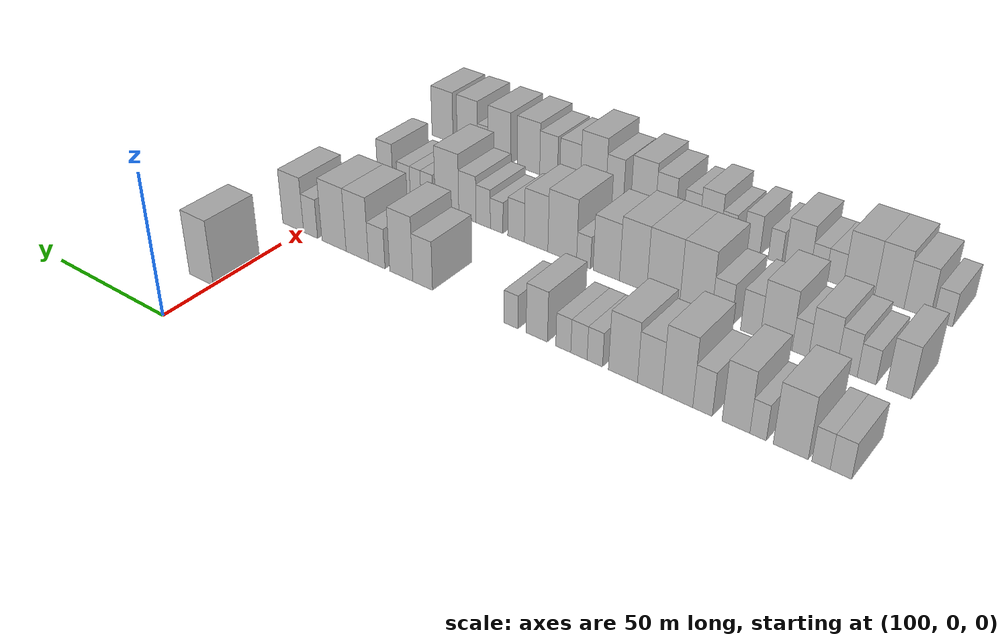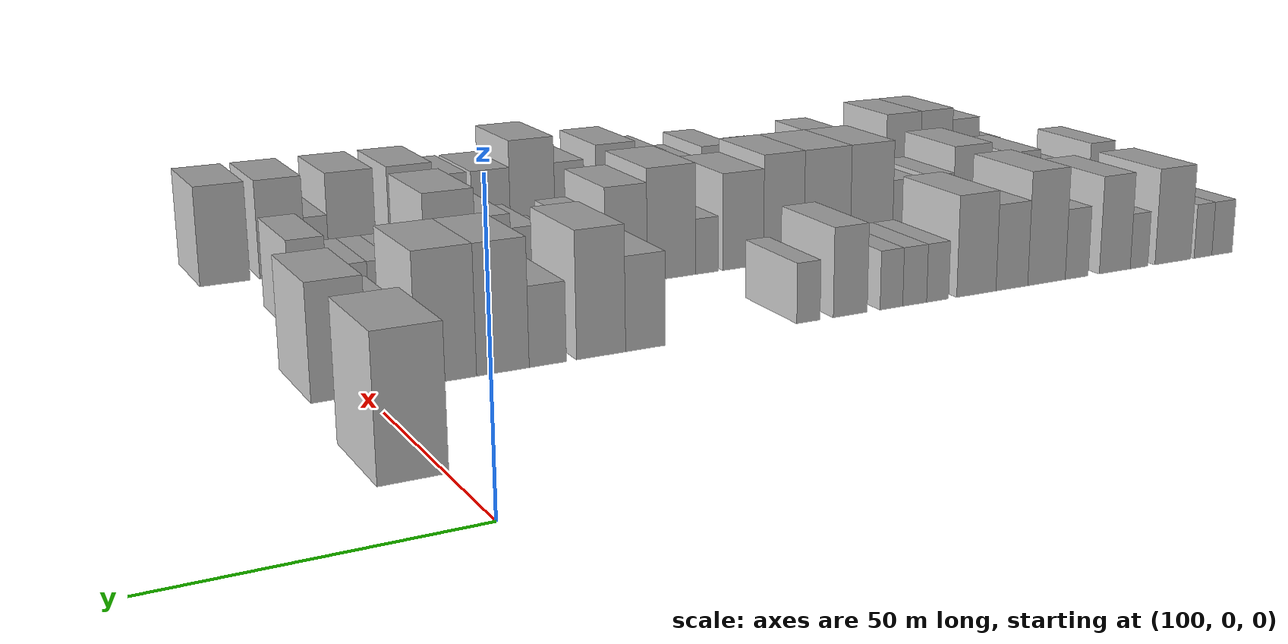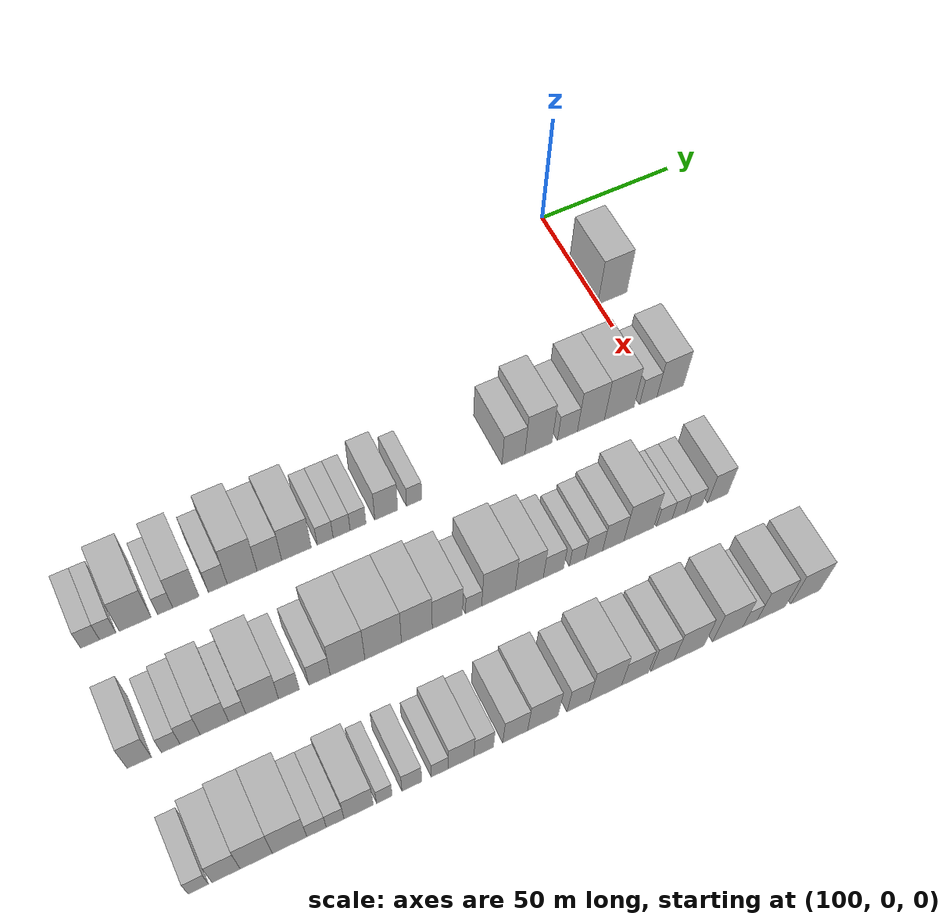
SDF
<sdf version="1.6">
 <world name="default">
  <model name="building_339">
   <static>1</static>
   <pose>130.0000 5.2632 0 0.000000 0.000000 0.000000</pose>
   <link name="link">
    <pose>0 0 12.00 0 0 0</pose>
    <collision name="collision"><geometry><box><size>20.0000 11.1736 24.0000</size></box></geometry></collision>
    <visual name="visual">
     <cast_shadows>0</cast_shadows>
     <geometry><box><size>20.0000 11.1736 24.0000</size></box></geometry>
     <material>
      <script>
       <uri>model://HANNAS_wall/materials/scripts</uri>
       <uri>model://HANNAS_wall/materials/textures</uri>
       <name>vrc/HANNAS_wall</name>
      </script>
     </material>
    </visual>
   </link>
  </model>
  <model name="building_456">
   <static>1</static>
   <pose>170.0000 -193.8971 0 0.000000 0.000000 0.000000</pose>
   <link name="link">
    <pose>0 0 6.00 0 0 0</pose>
    <collision name="collision"><geometry><box><size>20.0000 5.9659 12.0000</size></box></geometry></collision>
    <visual name="visual">
     <cast_shadows>0</cast_shadows>
     <geometry><box><size>20.0000 5.9659 12.0000</size></box></geometry>
     <material>
      <script>
       <uri>model://HANNAS_wall/materials/scripts</uri>
       <uri>model://HANNAS_wall/materials/textures</uri>
       <name>vrc/HANNAS_wall</name>
      </script>
     </material>
    </visual>
   </link>
  </model>
  <model name="building_457">
   <static>1</static>
   <pose>170.0000 -188.3424 0 0.000000 0.000000 0.000000</pose>
   <link name="link">
    <pose>0 0 6.00 0 0 0</pose>
    <collision name="collision"><geometry><box><size>20.0000 5.1435 12.0000</size></box></geometry></collision>
    <visual name="visual">
     <cast_shadows>0</cast_shadows>
     <geometry><box><size>20.0000 5.1435 12.0000</size></box></geometry>
     <material>
      <script>
       <uri>model://HANNAS_wall/materials/scripts</uri>
       <uri>model://HANNAS_wall/materials/textures</uri>
       <name>vrc/HANNAS_wall</name>
      </script>
     </material>
    </visual>
   </link>
  </model>
  <model name="building_458">
   <static>1</static>
   <pose>170.0000 -179.7180 0 0.000000 0.000000 0.000000</pose>
   <link name="link">
    <pose>0 0 10.50 0 0 0</pose>
    <collision name="collision"><geometry><box><size>20.0000 10.1053 21.0000</size></box></geometry></collision>
    <visual name="visual">
     <cast_shadows>0</cast_shadows>
     <geometry><box><size>20.0000 10.1053 21.0000</size></box></geometry>
     <material>
      <script>
       <uri>model://HANNAS_wall/materials/scripts</uri>
       <uri>model://HANNAS_wall/materials/textures</uri>
       <name>vrc/HANNAS_wall</name>
      </script>
     </material>
    </visual>
   </link>
  </model>
  <model name="building_459">
   <static>1</static>
   <pose>170.0000 -170.2269 0 0.000000 0.000000 0.000000</pose>
   <link name="link">
    <pose>0 0 6.00 0 0 0</pose>
    <collision name="collision"><geometry><box><size>20.0000 4.8769 12.0000</size></box></geometry></collision>
    <visual name="visual">
     <cast_shadows>0</cast_shadows>
     <geometry><box><size>20.0000 4.8769 12.0000</size></box></geometry>
     <material>
      <script>
       <uri>model://HANNAS_wall/materials/scripts</uri>
       <uri>model://HANNAS_wall/materials/textures</uri>
       <name>vrc/HANNAS_wall</name>
      </script>
     </material>
    </visual>
   </link>
  </model>
  <model name="building_460">
   <static>1</static>
   <pose>170.0000 -163.5722 0 0.000000 0.000000 0.000000</pose>
   <link name="link">
    <pose>0 0 10.50 0 0 0</pose>
    <collision name="collision"><geometry><box><size>20.0000 8.4324 21.0000</size></box></geometry></collision>
    <visual name="visual">
     <cast_shadows>0</cast_shadows>
     <geometry><box><size>20.0000 8.4324 21.0000</size></box></geometry>
     <material>
      <script>
       <uri>model://HANNAS_wall/materials/scripts</uri>
       <uri>model://HANNAS_wall/materials/textures</uri>
       <name>vrc/HANNAS_wall</name>
      </script>
     </material>
    </visual>
   </link>
  </model>
  <model name="building_461">
   <static>1</static>
   <pose>170.0000 -153.2986 0 0.000000 0.000000 0.000000</pose>
   <link name="link">
    <pose>0 0 7.50 0 0 0</pose>
    <collision name="collision"><geometry><box><size>20.0000 6.1147 15.0000</size></box></geometry></collision>
    <visual name="visual">
     <cast_shadows>0</cast_shadows>
     <geometry><box><size>20.0000 6.1147 15.0000</size></box></geometry>
     <material>
      <script>
       <uri>model://HANNAS_wall/materials/scripts</uri>
       <uri>model://HANNAS_wall/materials/textures</uri>
       <name>vrc/HANNAS_wall</name>
      </script>
     </material>
    </visual>
   </link>
  </model>
  <model name="building_462">
   <static>1</static>
   <pose>170.0000 -145.3566 0 0.000000 0.000000 0.000000</pose>
   <link name="link">
    <pose>0 0 12.00 0 0 0</pose>
    <collision name="collision"><geometry><box><size>20.0000 9.7693 24.0000</size></box></geometry></collision>
    <visual name="visual">
     <cast_shadows>0</cast_shadows>
     <geometry><box><size>20.0000 9.7693 24.0000</size></box></geometry>
     <material>
      <script>
       <uri>model://HANNAS_wall/materials/scripts</uri>
       <uri>model://HANNAS_wall/materials/textures</uri>
       <name>vrc/HANNAS_wall</name>
      </script>
     </material>
    </visual>
   </link>
  </model>
  <model name="building_463">
   <static>1</static>
   <pose>170.0000 -136.4211 0 0.000000 0.000000 0.000000</pose>
   <link name="link">
    <pose>0 0 9.00 0 0 0</pose>
    <collision name="collision"><geometry><box><size>20.0000 8.1017 18.0000</size></box></geometry></collision>
    <visual name="visual">
     <cast_shadows>0</cast_shadows>
     <geometry><box><size>20.0000 8.1017 18.0000</size></box></geometry>
     <material>
      <script>
       <uri>model://HANNAS_wall/materials/scripts</uri>
       <uri>model://HANNAS_wall/materials/textures</uri>
       <name>vrc/HANNAS_wall</name>
      </script>
     </material>
    </visual>
   </link>
  </model>
  <model name="building_464">
   <static>1</static>
   <pose>170.0000 -127.4775 0 0.000000 0.000000 0.000000</pose>
   <link name="link">
    <pose>0 0 10.50 0 0 0</pose>
    <collision name="collision"><geometry><box><size>20.0000 9.7855 21.0000</size></box></geometry></collision>
    <visual name="visual">
     <cast_shadows>0</cast_shadows>
     <geometry><box><size>20.0000 9.7855 21.0000</size></box></geometry>
     <material>
      <script>
       <uri>model://HANNAS_wall/materials/scripts</uri>
       <uri>model://HANNAS_wall/materials/textures</uri>
       <name>vrc/HANNAS_wall</name>
      </script>
     </material>
    </visual>
   </link>
  </model>
  <model name="building_465">
   <static>1</static>
   <pose>170.0000 -117.9126 0 0.000000 0.000000 0.000000</pose>
   <link name="link">
    <pose>0 0 6.00 0 0 0</pose>
    <collision name="collision"><geometry><box><size>20.0000 5.3442 12.0000</size></box></geometry></collision>
    <visual name="visual">
     <cast_shadows>0</cast_shadows>
     <geometry><box><size>20.0000 5.3442 12.0000</size></box></geometry>
     <material>
      <script>
       <uri>model://HANNAS_wall/materials/scripts</uri>
       <uri>model://HANNAS_wall/materials/textures</uri>
       <name>vrc/HANNAS_wall</name>
      </script>
     </material>
    </visual>
   </link>
  </model>
  <model name="building_466">
   <static>1</static>
   <pose>170.0000 -112.3767 0 0.000000 0.000000 0.000000</pose>
   <link name="link">
    <pose>0 0 6.00 0 0 0</pose>
    <collision name="collision"><geometry><box><size>20.0000 5.7277 12.0000</size></box></geometry></collision>
    <visual name="visual">
     <cast_shadows>0</cast_shadows>
     <geometry><box><size>20.0000 5.7277 12.0000</size></box></geometry>
     <material>
      <script>
       <uri>model://HANNAS_wall/materials/scripts</uri>
       <uri>model://HANNAS_wall/materials/textures</uri>
       <name>vrc/HANNAS_wall</name>
      </script>
     </material>
    </visual>
   </link>
  </model>
  <model name="building_467">
   <static>1</static>
   <pose>170.0000 -106.8365 0 0.000000 0.000000 0.000000</pose>
   <link name="link">
    <pose>0 0 6.00 0 0 0</pose>
    <collision name="collision"><geometry><box><size>20.0000 5.3526 12.0000</size></box></geometry></collision>
    <visual name="visual">
     <cast_shadows>0</cast_shadows>
     <geometry><box><size>20.0000 5.3526 12.0000</size></box></geometry>
     <material>
      <script>
       <uri>model://HANNAS_wall/materials/scripts</uri>
       <uri>model://HANNAS_wall/materials/textures</uri>
       <name>vrc/HANNAS_wall</name>
      </script>
     </material>
    </visual>
   </link>
  </model>
  <model name="building_468">
   <static>1</static>
   <pose>170.0000 -97.2520 0 0.000000 0.000000 0.000000</pose>
   <link name="link">
    <pose>0 0 9.00 0 0 0</pose>
    <collision name="collision"><geometry><box><size>20.0000 7.8163 18.0000</size></box></geometry></collision>
    <visual name="visual">
     <cast_shadows>0</cast_shadows>
     <geometry><box><size>20.0000 7.8163 18.0000</size></box></geometry>
     <material>
      <script>
       <uri>model://HANNAS_wall/materials/scripts</uri>
       <uri>model://HANNAS_wall/materials/textures</uri>
       <name>vrc/HANNAS_wall</name>
      </script>
     </material>
    </visual>
   </link>
  </model>
  <model name="building_469">
   <static>1</static>
   <pose>170.0000 -87.7280 0 0.000000 0.000000 0.000000</pose>
   <link name="link">
    <pose>0 0 6.00 0 0 0</pose>
    <collision name="collision"><geometry><box><size>20.0000 5.2318 12.0000</size></box></geometry></collision>
    <visual name="visual">
     <cast_shadows>0</cast_shadows>
     <geometry><box><size>20.0000 5.2318 12.0000</size></box></geometry>
     <material>
      <script>
       <uri>model://HANNAS_wall/materials/scripts</uri>
       <uri>model://HANNAS_wall/materials/textures</uri>
       <name>vrc/HANNAS_wall</name>
      </script>
     </material>
    </visual>
   </link>
  </model>
  <model name="building_470">
   <static>1</static>
   <pose>170.0000 -52.9093 0 0.000000 0.000000 0.000000</pose>
   <link name="link">
    <pose>0 0 9.00 0 0 0</pose>
    <collision name="collision"><geometry><box><size>20.0000 8.1352 18.0000</size></box></geometry></collision>
    <visual name="visual">
     <cast_shadows>0</cast_shadows>
     <geometry><box><size>20.0000 8.1352 18.0000</size></box></geometry>
     <material>
      <script>
       <uri>model://HANNAS_wall/materials/scripts</uri>
       <uri>model://HANNAS_wall/materials/textures</uri>
       <name>vrc/HANNAS_wall</name>
      </script>
     </material>
    </visual>
   </link>
  </model>
  <model name="building_471">
   <static>1</static>
   <pose>170.0000 -43.9746 0 0.000000 0.000000 0.000000</pose>
   <link name="link">
    <pose>0 0 12.00 0 0 0</pose>
    <collision name="collision"><geometry><box><size>20.0000 9.7342 24.0000</size></box></geometry></collision>
    <visual name="visual">
     <cast_shadows>0</cast_shadows>
     <geometry><box><size>20.0000 9.7342 24.0000</size></box></geometry>
     <material>
      <script>
       <uri>model://HANNAS_wall/materials/scripts</uri>
       <uri>model://HANNAS_wall/materials/textures</uri>
       <name>vrc/HANNAS_wall</name>
      </script>
     </material>
    </visual>
   </link>
  </model>
  <model name="building_472">
   <static>1</static>
   <pose>170.0000 -33.5180 0 0.000000 0.000000 0.000000</pose>
   <link name="link">
    <pose>0 0 7.50 0 0 0</pose>
    <collision name="collision"><geometry><box><size>20.0000 7.1789 15.0000</size></box></geometry></collision>
    <visual name="visual">
     <cast_shadows>0</cast_shadows>
     <geometry><box><size>20.0000 7.1789 15.0000</size></box></geometry>
     <material>
      <script>
       <uri>model://HANNAS_wall/materials/scripts</uri>
       <uri>model://HANNAS_wall/materials/textures</uri>
       <name>vrc/HANNAS_wall</name>
      </script>
     </material>
    </visual>
   </link>
  </model>
  <model name="building_473">
   <static>1</static>
   <pose>170.0000 -24.9867 0 0.000000 0.000000 0.000000</pose>
   <link name="link">
    <pose>0 0 12.00 0 0 0</pose>
    <collision name="collision"><geometry><box><size>20.0000 9.8836 24.0000</size></box></geometry></collision>
    <visual name="visual">
     <cast_shadows>0</cast_shadows>
     <geometry><box><size>20.0000 9.8836 24.0000</size></box></geometry>
     <material>
      <script>
       <uri>model://HANNAS_wall/materials/scripts</uri>
       <uri>model://HANNAS_wall/materials/textures</uri>
       <name>vrc/HANNAS_wall</name>
      </script>
     </material>
    </visual>
   </link>
  </model>
  <model name="building_474">
   <static>1</static>
   <pose>170.0000 -14.5535 0 0.000000 0.000000 0.000000</pose>
   <link name="link">
    <pose>0 0 12.00 0 0 0</pose>
    <collision name="collision"><geometry><box><size>20.0000 10.9827 24.0000</size></box></geometry></collision>
    <visual name="visual">
     <cast_shadows>0</cast_shadows>
     <geometry><box><size>20.0000 10.9827 24.0000</size></box></geometry>
     <material>
      <script>
       <uri>model://HANNAS_wall/materials/scripts</uri>
       <uri>model://HANNAS_wall/materials/textures</uri>
       <name>vrc/HANNAS_wall</name>
      </script>
     </material>
    </visual>
   </link>
  </model>
  <model name="building_475">
   <static>1</static>
   <pose>170.0000 -3.8141 0 0.000000 0.000000 0.000000</pose>
   <link name="link">
    <pose>0 0 7.50 0 0 0</pose>
    <collision name="collision"><geometry><box><size>20.0000 6.4961 15.0000</size></box></geometry></collision>
    <visual name="visual">
     <cast_shadows>0</cast_shadows>
     <geometry><box><size>20.0000 6.4961 15.0000</size></box></geometry>
     <material>
      <script>
       <uri>model://HANNAS_wall/materials/scripts</uri>
       <uri>model://HANNAS_wall/materials/textures</uri>
       <name>vrc/HANNAS_wall</name>
      </script>
     </material>
    </visual>
   </link>
  </model>
  <model name="building_476">
   <static>1</static>
   <pose>170.0000 4.3822 0 0.000000 0.000000 0.000000</pose>
   <link name="link">
    <pose>0 0 10.50 0 0 0</pose>
    <collision name="collision"><geometry><box><size>20.0000 9.8967 21.0000</size></box></geometry></collision>
    <visual name="visual">
     <cast_shadows>0</cast_shadows>
     <geometry><box><size>20.0000 9.8967 21.0000</size></box></geometry>
     <material>
      <script>
       <uri>model://HANNAS_wall/materials/scripts</uri>
       <uri>model://HANNAS_wall/materials/textures</uri>
       <name>vrc/HANNAS_wall</name>
      </script>
     </material>
    </visual>
   </link>
  </model>
  <model name="building_593">
   <static>1</static>
   <pose>210.0000 -193.2308 0 0.000000 0.000000 0.000000</pose>
   <link name="link">
    <pose>0 0 9.00 0 0 0</pose>
    <collision name="collision"><geometry><box><size>20.0000 7.3583 18.0000</size></box></geometry></collision>
    <visual name="visual">
     <cast_shadows>0</cast_shadows>
     <geometry><box><size>20.0000 7.3583 18.0000</size></box></geometry>
     <material>
      <script>
       <uri>model://HANNAS_wall/materials/scripts</uri>
       <uri>model://HANNAS_wall/materials/textures</uri>
       <name>vrc/HANNAS_wall</name>
      </script>
     </material>
    </visual>
   </link>
  </model>
  <model name="building_594">
   <static>1</static>
   <pose>210.0000 -183.7102 0 0.000000 0.000000 0.000000</pose>
   <link name="link">
    <pose>0 0 6.00 0 0 0</pose>
    <collision name="collision"><geometry><box><size>20.0000 5.6830 12.0000</size></box></geometry></collision>
    <visual name="visual">
     <cast_shadows>0</cast_shadows>
     <geometry><box><size>20.0000 5.6830 12.0000</size></box></geometry>
     <material>
      <script>
       <uri>model://HANNAS_wall/materials/scripts</uri>
       <uri>model://HANNAS_wall/materials/textures</uri>
       <name>vrc/HANNAS_wall</name>
      </script>
     </material>
    </visual>
   </link>
  </model>
  <model name="building_595">
   <static>1</static>
   <pose>210.0000 -177.7602 0 0.000000 0.000000 0.000000</pose>
   <link name="link">
    <pose>0 0 7.50 0 0 0</pose>
    <collision name="collision"><geometry><box><size>20.0000 6.2169 15.0000</size></box></geometry></collision>
    <visual name="visual">
     <cast_shadows>0</cast_shadows>
     <geometry><box><size>20.0000 6.2169 15.0000</size></box></geometry>
     <material>
      <script>
       <uri>model://HANNAS_wall/materials/scripts</uri>
       <uri>model://HANNAS_wall/materials/textures</uri>
       <name>vrc/HANNAS_wall</name>
      </script>
     </material>
    </visual>
   </link>
  </model>
  <model name="building_596">
   <static>1</static>
   <pose>210.0000 -170.2612 0 0.000000 0.000000 0.000000</pose>
   <link name="link">
    <pose>0 0 9.00 0 0 0</pose>
    <collision name="collision"><geometry><box><size>20.0000 8.7811 18.0000</size></box></geometry></collision>
    <visual name="visual">
     <cast_shadows>0</cast_shadows>
     <geometry><box><size>20.0000 8.7811 18.0000</size></box></geometry>
     <material>
      <script>
       <uri>model://HANNAS_wall/materials/scripts</uri>
       <uri>model://HANNAS_wall/materials/textures</uri>
       <name>vrc/HANNAS_wall</name>
      </script>
     </material>
    </visual>
   </link>
  </model>
  <model name="building_597">
   <static>1</static>
   <pose>210.0000 -163.2305 0 0.000000 0.000000 0.000000</pose>
   <link name="link">
    <pose>0 0 6.00 0 0 0</pose>
    <collision name="collision"><geometry><box><size>20.0000 5.2803 12.0000</size></box></geometry></collision>
    <visual name="visual">
     <cast_shadows>0</cast_shadows>
     <geometry><box><size>20.0000 5.2803 12.0000</size></box></geometry>
     <material>
      <script>
       <uri>model://HANNAS_wall/materials/scripts</uri>
       <uri>model://HANNAS_wall/materials/textures</uri>
       <name>vrc/HANNAS_wall</name>
      </script>
     </material>
    </visual>
   </link>
  </model>
  <model name="building_598">
   <static>1</static>
   <pose>210.0000 -155.4444 0 0.000000 0.000000 0.000000</pose>
   <link name="link">
    <pose>0 0 10.50 0 0 0</pose>
    <collision name="collision"><geometry><box><size>20.0000 10.2920 21.0000</size></box></geometry></collision>
    <visual name="visual">
     <cast_shadows>0</cast_shadows>
     <geometry><box><size>20.0000 10.2920 21.0000</size></box></geometry>
     <material>
      <script>
       <uri>model://HANNAS_wall/materials/scripts</uri>
       <uri>model://HANNAS_wall/materials/textures</uri>
       <name>vrc/HANNAS_wall</name>
      </script>
     </material>
    </visual>
   </link>
  </model>
  <model name="building_599">
   <static>1</static>
   <pose>210.0000 -147.0232 0 0.000000 0.000000 0.000000</pose>
   <link name="link">
    <pose>0 0 7.50 0 0 0</pose>
    <collision name="collision"><geometry><box><size>20.0000 6.5503 15.0000</size></box></geometry></collision>
    <visual name="visual">
     <cast_shadows>0</cast_shadows>
     <geometry><box><size>20.0000 6.5503 15.0000</size></box></geometry>
     <material>
      <script>
       <uri>model://HANNAS_wall/materials/scripts</uri>
       <uri>model://HANNAS_wall/materials/textures</uri>
       <name>vrc/HANNAS_wall</name>
      </script>
     </material>
    </visual>
   </link>
  </model>
  <model name="building_600">
   <static>1</static>
   <pose>210.0000 -137.3284 0 0.000000 0.000000 0.000000</pose>
   <link name="link">
    <pose>0 0 7.50 0 0 0</pose>
    <collision name="collision"><geometry><box><size>20.0000 6.8393 15.0000</size></box></geometry></collision>
    <visual name="visual">
     <cast_shadows>0</cast_shadows>
     <geometry><box><size>20.0000 6.8393 15.0000</size></box></geometry>
     <material>
      <script>
       <uri>model://HANNAS_wall/materials/scripts</uri>
       <uri>model://HANNAS_wall/materials/textures</uri>
       <name>vrc/HANNAS_wall</name>
      </script>
     </material>
    </visual>
   </link>
  </model>
  <model name="building_601">
   <static>1</static>
   <pose>210.0000 -128.3448 0 0.000000 0.000000 0.000000</pose>
   <link name="link">
    <pose>0 0 12.00 0 0 0</pose>
    <collision name="collision"><geometry><box><size>20.0000 11.1278 24.0000</size></box></geometry></collision>
    <visual name="visual">
     <cast_shadows>0</cast_shadows>
     <geometry><box><size>20.0000 11.1278 24.0000</size></box></geometry>
     <material>
      <script>
       <uri>model://HANNAS_wall/materials/scripts</uri>
       <uri>model://HANNAS_wall/materials/textures</uri>
       <name>vrc/HANNAS_wall</name>
      </script>
     </material>
    </visual>
   </link>
  </model>
  <model name="building_602">
   <static>1</static>
   <pose>210.0000 -116.8446 0 0.000000 0.000000 0.000000</pose>
   <link name="link">
    <pose>0 0 12.00 0 0 0</pose>
    <collision name="collision"><geometry><box><size>20.0000 11.8727 24.0000</size></box></geometry></collision>
    <visual name="visual">
     <cast_shadows>0</cast_shadows>
     <geometry><box><size>20.0000 11.8727 24.0000</size></box></geometry>
     <material>
      <script>
       <uri>model://HANNAS_wall/materials/scripts</uri>
       <uri>model://HANNAS_wall/materials/textures</uri>
       <name>vrc/HANNAS_wall</name>
      </script>
     </material>
    </visual>
   </link>
  </model>
  <model name="building_603">
   <static>1</static>
   <pose>210.0000 -105.8497 0 0.000000 0.000000 0.000000</pose>
   <link name="link">
    <pose>0 0 12.00 0 0 0</pose>
    <collision name="collision"><geometry><box><size>20.0000 10.1169 24.0000</size></box></geometry></collision>
    <visual name="visual">
     <cast_shadows>0</cast_shadows>
     <geometry><box><size>20.0000 10.1169 24.0000</size></box></geometry>
     <material>
      <script>
       <uri>model://HANNAS_wall/materials/scripts</uri>
       <uri>model://HANNAS_wall/materials/textures</uri>
       <name>vrc/HANNAS_wall</name>
      </script>
     </material>
    </visual>
   </link>
  </model>
  <model name="building_604">
   <static>1</static>
   <pose>210.0000 -95.7958 0 0.000000 0.000000 0.000000</pose>
   <link name="link">
    <pose>0 0 10.50 0 0 0</pose>
    <collision name="collision"><geometry><box><size>20.0000 9.9910 21.0000</size></box></geometry></collision>
    <visual name="visual">
     <cast_shadows>0</cast_shadows>
     <geometry><box><size>20.0000 9.9910 21.0000</size></box></geometry>
     <material>
      <script>
       <uri>model://HANNAS_wall/materials/scripts</uri>
       <uri>model://HANNAS_wall/materials/textures</uri>
       <name>vrc/HANNAS_wall</name>
      </script>
     </material>
    </visual>
   </link>
  </model>
  <model name="building_605">
   <static>1</static>
   <pose>210.0000 -87.0815 0 0.000000 0.000000 0.000000</pose>
   <link name="link">
    <pose>0 0 6.00 0 0 0</pose>
    <collision name="collision"><geometry><box><size>20.0000 5.4375 12.0000</size></box></geometry></collision>
    <visual name="visual">
     <cast_shadows>0</cast_shadows>
     <geometry><box><size>20.0000 5.4375 12.0000</size></box></geometry>
     <material>
      <script>
       <uri>model://HANNAS_wall/materials/scripts</uri>
       <uri>model://HANNAS_wall/materials/textures</uri>
       <name>vrc/HANNAS_wall</name>
      </script>
     </material>
    </visual>
   </link>
  </model>
  <model name="building_606">
   <static>1</static>
   <pose>210.0000 -78.6759 0 0.000000 0.000000 0.000000</pose>
   <link name="link">
    <pose>0 0 12.00 0 0 0</pose>
    <collision name="collision"><geometry><box><size>20.0000 11.3737 24.0000</size></box></geometry></collision>
    <visual name="visual">
     <cast_shadows>0</cast_shadows>
     <geometry><box><size>20.0000 11.3737 24.0000</size></box></geometry>
     <material>
      <script>
       <uri>model://HANNAS_wall/materials/scripts</uri>
       <uri>model://HANNAS_wall/materials/textures</uri>
       <name>vrc/HANNAS_wall</name>
      </script>
     </material>
    </visual>
   </link>
  </model>
  <model name="building_607">
   <static>1</static>
   <pose>210.0000 -68.2204 0 0.000000 0.000000 0.000000</pose>
   <link name="link">
    <pose>0 0 10.50 0 0 0</pose>
    <collision name="collision"><geometry><box><size>20.0000 9.5373 21.0000</size></box></geometry></collision>
    <visual name="visual">
     <cast_shadows>0</cast_shadows>
     <geometry><box><size>20.0000 9.5373 21.0000</size></box></geometry>
     <material>
      <script>
       <uri>model://HANNAS_wall/materials/scripts</uri>
       <uri>model://HANNAS_wall/materials/textures</uri>
       <name>vrc/HANNAS_wall</name>
      </script>
     </material>
    </visual>
   </link>
  </model>
  <model name="building_608">
   <static>1</static>
   <pose>210.0000 -59.9729 0 0.000000 0.000000 0.000000</pose>
   <link name="link">
    <pose>0 0 7.50 0 0 0</pose>
    <collision name="collision"><geometry><box><size>20.0000 6.9576 15.0000</size></box></geometry></collision>
    <visual name="visual">
     <cast_shadows>0</cast_shadows>
     <geometry><box><size>20.0000 6.9576 15.0000</size></box></geometry>
     <material>
      <script>
       <uri>model://HANNAS_wall/materials/scripts</uri>
       <uri>model://HANNAS_wall/materials/textures</uri>
       <name>vrc/HANNAS_wall</name>
      </script>
     </material>
    </visual>
   </link>
  </model>
  <model name="building_609">
   <static>1</static>
   <pose>210.0000 -51.8099 0 0.000000 0.000000 0.000000</pose>
   <link name="link">
    <pose>0 0 6.00 0 0 0</pose>
    <collision name="collision"><geometry><box><size>20.0000 5.3685 12.0000</size></box></geometry></collision>
    <visual name="visual">
     <cast_shadows>0</cast_shadows>
     <geometry><box><size>20.0000 5.3685 12.0000</size></box></geometry>
     <material>
      <script>
       <uri>model://HANNAS_wall/materials/scripts</uri>
       <uri>model://HANNAS_wall/materials/textures</uri>
       <name>vrc/HANNAS_wall</name>
      </script>
     </material>
    </visual>
   </link>
  </model>
  <model name="building_610">
   <static>1</static>
   <pose>210.0000 -46.0304 0 0.000000 0.000000 0.000000</pose>
   <link name="link">
    <pose>0 0 7.50 0 0 0</pose>
    <collision name="collision"><geometry><box><size>20.0000 6.1905 15.0000</size></box></geometry></collision>
    <visual name="visual">
     <cast_shadows>0</cast_shadows>
     <geometry><box><size>20.0000 6.1905 15.0000</size></box></geometry>
     <material>
      <script>
       <uri>model://HANNAS_wall/materials/scripts</uri>
       <uri>model://HANNAS_wall/materials/textures</uri>
       <name>vrc/HANNAS_wall</name>
      </script>
     </material>
    </visual>
   </link>
  </model>
  <model name="building_611">
   <static>1</static>
   <pose>210.0000 -39.2137 0 0.000000 0.000000 0.000000</pose>
   <link name="link">
    <pose>0 0 9.00 0 0 0</pose>
    <collision name="collision"><geometry><box><size>20.0000 7.4429 18.0000</size></box></geometry></collision>
    <visual name="visual">
     <cast_shadows>0</cast_shadows>
     <geometry><box><size>20.0000 7.4429 18.0000</size></box></geometry>
     <material>
      <script>
       <uri>model://HANNAS_wall/materials/scripts</uri>
       <uri>model://HANNAS_wall/materials/textures</uri>
       <name>vrc/HANNAS_wall</name>
      </script>
     </material>
    </visual>
   </link>
  </model>
  <model name="building_612">
   <static>1</static>
   <pose>210.0000 -30.2279 0 0.000000 0.000000 0.000000</pose>
   <link name="link">
    <pose>0 0 12.00 0 0 0</pose>
    <collision name="collision"><geometry><box><size>20.0000 10.5288 24.0000</size></box></geometry></collision>
    <visual name="visual">
     <cast_shadows>0</cast_shadows>
     <geometry><box><size>20.0000 10.5288 24.0000</size></box></geometry>
     <material>
      <script>
       <uri>model://HANNAS_wall/materials/scripts</uri>
       <uri>model://HANNAS_wall/materials/textures</uri>
       <name>vrc/HANNAS_wall</name>
      </script>
     </material>
    </visual>
   </link>
  </model>
  <model name="building_613">
   <static>1</static>
   <pose>210.0000 -21.1947 0 0.000000 0.000000 0.000000</pose>
   <link name="link">
    <pose>0 0 6.00 0 0 0</pose>
    <collision name="collision"><geometry><box><size>20.0000 5.5374 12.0000</size></box></geometry></collision>
    <visual name="visual">
     <cast_shadows>0</cast_shadows>
     <geometry><box><size>20.0000 5.5374 12.0000</size></box></geometry>
     <material>
      <script>
       <uri>model://HANNAS_wall/materials/scripts</uri>
       <uri>model://HANNAS_wall/materials/textures</uri>
       <name>vrc/HANNAS_wall</name>
      </script>
     </material>
    </visual>
   </link>
  </model>
  <model name="building_614">
   <static>1</static>
   <pose>210.0000 -15.9629 0 0.000000 0.000000 0.000000</pose>
   <link name="link">
    <pose>0 0 6.00 0 0 0</pose>
    <collision name="collision"><geometry><box><size>20.0000 4.9262 12.0000</size></box></geometry></collision>
    <visual name="visual">
     <cast_shadows>0</cast_shadows>
     <geometry><box><size>20.0000 4.9262 12.0000</size></box></geometry>
     <material>
      <script>
       <uri>model://HANNAS_wall/materials/scripts</uri>
       <uri>model://HANNAS_wall/materials/textures</uri>
       <name>vrc/HANNAS_wall</name>
      </script>
     </material>
    </visual>
   </link>
  </model>
  <model name="building_615">
   <static>1</static>
   <pose>210.0000 -10.5226 0 0.000000 0.000000 0.000000</pose>
   <link name="link">
    <pose>0 0 6.00 0 0 0</pose>
    <collision name="collision"><geometry><box><size>20.0000 5.9545 12.0000</size></box></geometry></collision>
    <visual name="visual">
     <cast_shadows>0</cast_shadows>
     <geometry><box><size>20.0000 5.9545 12.0000</size></box></geometry>
     <material>
      <script>
       <uri>model://HANNAS_wall/materials/scripts</uri>
       <uri>model://HANNAS_wall/materials/textures</uri>
       <name>vrc/HANNAS_wall</name>
      </script>
     </material>
    </visual>
   </link>
  </model>
  <model name="building_616">
   <static>1</static>
   <pose>210.0000 -1.9221 0 0.000000 0.000000 0.000000</pose>
   <link name="link">
    <pose>0 0 9.00 0 0 0</pose>
    <collision name="collision"><geometry><box><size>20.0000 7.2465 18.0000</size></box></geometry></collision>
    <visual name="visual">
     <cast_shadows>0</cast_shadows>
     <geometry><box><size>20.0000 7.2465 18.0000</size></box></geometry>
     <material>
      <script>
       <uri>model://HANNAS_wall/materials/scripts</uri>
       <uri>model://HANNAS_wall/materials/textures</uri>
       <name>vrc/HANNAS_wall</name>
      </script>
     </material>
    </visual>
   </link>
  </model>
  <model name="building_736">
   <static>1</static>
   <pose>250.0000 -190.9120 0 0.000000 0.000000 0.000000</pose>
   <link name="link">
    <pose>0 0 6.00 0 0 0</pose>
    <collision name="collision"><geometry><box><size>20.0000 5.9660 12.0000</size></box></geometry></collision>
    <visual name="visual">
     <cast_shadows>0</cast_shadows>
     <geometry><box><size>20.0000 5.9660 12.0000</size></box></geometry>
     <material>
      <script>
       <uri>model://HANNAS_wall/materials/scripts</uri>
       <uri>model://HANNAS_wall/materials/textures</uri>
       <name>vrc/HANNAS_wall</name>
      </script>
     </material>
    </visual>
   </link>
  </model>
  <model name="building_737">
   <static>1</static>
   <pose>250.0000 -182.7869 0 0.000000 0.000000 0.000000</pose>
   <link name="link">
    <pose>0 0 9.00 0 0 0</pose>
    <collision name="collision"><geometry><box><size>20.0000 8.2843 18.0000</size></box></geometry></collision>
    <visual name="visual">
     <cast_shadows>0</cast_shadows>
     <geometry><box><size>20.0000 8.2843 18.0000</size></box></geometry>
     <material>
      <script>
       <uri>model://HANNAS_wall/materials/scripts</uri>
       <uri>model://HANNAS_wall/materials/textures</uri>
       <name>vrc/HANNAS_wall</name>
      </script>
     </material>
    </visual>
   </link>
  </model>
  <model name="building_738">
   <static>1</static>
   <pose>250.0000 -173.8491 0 0.000000 0.000000 0.000000</pose>
   <link name="link">
    <pose>0 0 10.50 0 0 0</pose>
    <collision name="collision"><geometry><box><size>20.0000 9.5912 21.0000</size></box></geometry></collision>
    <visual name="visual">
     <cast_shadows>0</cast_shadows>
     <geometry><box><size>20.0000 9.5912 21.0000</size></box></geometry>
     <material>
      <script>
       <uri>model://HANNAS_wall/materials/scripts</uri>
       <uri>model://HANNAS_wall/materials/textures</uri>
       <name>vrc/HANNAS_wall</name>
      </script>
     </material>
    </visual>
   </link>
  </model>
  <model name="building_739">
   <static>1</static>
   <pose>250.0000 -163.8907 0 0.000000 0.000000 0.000000</pose>
   <link name="link">
    <pose>0 0 10.50 0 0 0</pose>
    <collision name="collision"><geometry><box><size>20.0000 10.3256 21.0000</size></box></geometry></collision>
    <visual name="visual">
     <cast_shadows>0</cast_shadows>
     <geometry><box><size>20.0000 10.3256 21.0000</size></box></geometry>
     <material>
      <script>
       <uri>model://HANNAS_wall/materials/scripts</uri>
       <uri>model://HANNAS_wall/materials/textures</uri>
       <name>vrc/HANNAS_wall</name>
      </script>
     </material>
    </visual>
   </link>
  </model>
  <model name="building_740">
   <static>1</static>
   <pose>250.0000 -155.7735 0 0.000000 0.000000 0.000000</pose>
   <link name="link">
    <pose>0 0 6.00 0 0 0</pose>
    <collision name="collision"><geometry><box><size>20.0000 5.9088 12.0000</size></box></geometry></collision>
    <visual name="visual">
     <cast_shadows>0</cast_shadows>
     <geometry><box><size>20.0000 5.9088 12.0000</size></box></geometry>
     <material>
      <script>
       <uri>model://HANNAS_wall/materials/scripts</uri>
       <uri>model://HANNAS_wall/materials/textures</uri>
       <name>vrc/HANNAS_wall</name>
      </script>
     </material>
    </visual>
   </link>
  </model>
  <model name="building_741">
   <static>1</static>
   <pose>250.0000 -150.1231 0 0.000000 0.000000 0.000000</pose>
   <link name="link">
    <pose>0 0 6.00 0 0 0</pose>
    <collision name="collision"><geometry><box><size>20.0000 5.3919 12.0000</size></box></geometry></collision>
    <visual name="visual">
     <cast_shadows>0</cast_shadows>
     <geometry><box><size>20.0000 5.3919 12.0000</size></box></geometry>
     <material>
      <script>
       <uri>model://HANNAS_wall/materials/scripts</uri>
       <uri>model://HANNAS_wall/materials/textures</uri>
       <name>vrc/HANNAS_wall</name>
      </script>
     </material>
    </visual>
   </link>
  </model>
  <model name="building_742">
   <static>1</static>
   <pose>250.0000 -142.9449 0 0.000000 0.000000 0.000000</pose>
   <link name="link">
    <pose>0 0 9.00 0 0 0</pose>
    <collision name="collision"><geometry><box><size>20.0000 8.9645 18.0000</size></box></geometry></collision>
    <visual name="visual">
     <cast_shadows>0</cast_shadows>
     <geometry><box><size>20.0000 8.9645 18.0000</size></box></geometry>
     <material>
      <script>
       <uri>model://HANNAS_wall/materials/scripts</uri>
       <uri>model://HANNAS_wall/materials/textures</uri>
       <name>vrc/HANNAS_wall</name>
      </script>
     </material>
    </visual>
   </link>
  </model>
  <model name="building_743">
   <static>1</static>
   <pose>250.0000 -135.0396 0 0.000000 0.000000 0.000000</pose>
   <link name="link">
    <pose>0 0 6.00 0 0 0</pose>
    <collision name="collision"><geometry><box><size>20.0000 4.8462 12.0000</size></box></geometry></collision>
    <visual name="visual">
     <cast_shadows>0</cast_shadows>
     <geometry><box><size>20.0000 4.8462 12.0000</size></box></geometry>
     <material>
      <script>
       <uri>model://HANNAS_wall/materials/scripts</uri>
       <uri>model://HANNAS_wall/materials/textures</uri>
       <name>vrc/HANNAS_wall</name>
      </script>
     </material>
    </visual>
   </link>
  </model>
  <model name="building_744">
   <static>1</static>
   <pose>250.0000 -126.5398 0 0.000000 0.000000 0.000000</pose>
   <link name="link">
    <pose>0 0 7.50 0 0 0</pose>
    <collision name="collision"><geometry><box><size>20.0000 6.1533 15.0000</size></box></geometry></collision>
    <visual name="visual">
     <cast_shadows>0</cast_shadows>
     <geometry><box><size>20.0000 6.1533 15.0000</size></box></geometry>
     <material>
      <script>
       <uri>model://HANNAS_wall/materials/scripts</uri>
       <uri>model://HANNAS_wall/materials/textures</uri>
       <name>vrc/HANNAS_wall</name>
      </script>
     </material>
    </visual>
   </link>
  </model>
  <model name="building_745">
   <static>1</static>
   <pose>250.0000 -117.7865 0 0.000000 0.000000 0.000000</pose>
   <link name="link">
    <pose>0 0 6.00 0 0 0</pose>
    <collision name="collision"><geometry><box><size>20.0000 5.3533 12.0000</size></box></geometry></collision>
    <visual name="visual">
     <cast_shadows>0</cast_shadows>
     <geometry><box><size>20.0000 5.3533 12.0000</size></box></geometry>
     <material>
      <script>
       <uri>model://HANNAS_wall/materials/scripts</uri>
       <uri>model://HANNAS_wall/materials/textures</uri>
       <name>vrc/HANNAS_wall</name>
      </script>
     </material>
    </visual>
   </link>
  </model>
  <model name="building_746">
   <static>1</static>
   <pose>250.0000 -111.0542 0 0.000000 0.000000 0.000000</pose>
   <link name="link">
    <pose>0 0 9.00 0 0 0</pose>
    <collision name="collision"><geometry><box><size>20.0000 8.1112 18.0000</size></box></geometry></collision>
    <visual name="visual">
     <cast_shadows>0</cast_shadows>
     <geometry><box><size>20.0000 8.1112 18.0000</size></box></geometry>
     <material>
      <script>
       <uri>model://HANNAS_wall/materials/scripts</uri>
       <uri>model://HANNAS_wall/materials/textures</uri>
       <name>vrc/HANNAS_wall</name>
      </script>
     </material>
    </visual>
   </link>
  </model>
  <model name="building_747">
   <static>1</static>
   <pose>250.0000 -103.8744 0 0.000000 0.000000 0.000000</pose>
   <link name="link">
    <pose>0 0 7.50 0 0 0</pose>
    <collision name="collision"><geometry><box><size>20.0000 6.2485 15.0000</size></box></geometry></collision>
    <visual name="visual">
     <cast_shadows>0</cast_shadows>
     <geometry><box><size>20.0000 6.2485 15.0000</size></box></geometry>
     <material>
      <script>
       <uri>model://HANNAS_wall/materials/scripts</uri>
       <uri>model://HANNAS_wall/materials/textures</uri>
       <name>vrc/HANNAS_wall</name>
      </script>
     </material>
    </visual>
   </link>
  </model>
  <model name="building_748">
   <static>1</static>
   <pose>250.0000 -93.7494 0 0.000000 0.000000 0.000000</pose>
   <link name="link">
    <pose>0 0 9.00 0 0 0</pose>
    <collision name="collision"><geometry><box><size>20.0000 8.0015 18.0000</size></box></geometry></collision>
    <visual name="visual">
     <cast_shadows>0</cast_shadows>
     <geometry><box><size>20.0000 8.0015 18.0000</size></box></geometry>
     <material>
      <script>
       <uri>model://HANNAS_wall/materials/scripts</uri>
       <uri>model://HANNAS_wall/materials/textures</uri>
       <name>vrc/HANNAS_wall</name>
      </script>
     </material>
    </visual>
   </link>
  </model>
  <model name="building_749">
   <static>1</static>
   <pose>250.0000 -84.8059 0 0.000000 0.000000 0.000000</pose>
   <link name="link">
    <pose>0 0 10.50 0 0 0</pose>
    <collision name="collision"><geometry><box><size>20.0000 9.8854 21.0000</size></box></geometry></collision>
    <visual name="visual">
     <cast_shadows>0</cast_shadows>
     <geometry><box><size>20.0000 9.8854 21.0000</size></box></geometry>
     <material>
      <script>
       <uri>model://HANNAS_wall/materials/scripts</uri>
       <uri>model://HANNAS_wall/materials/textures</uri>
       <name>vrc/HANNAS_wall</name>
      </script>
     </material>
    </visual>
   </link>
  </model>
  <model name="building_750">
   <static>1</static>
   <pose>250.0000 -73.2208 0 0.000000 0.000000 0.000000</pose>
   <link name="link">
    <pose>0 0 9.00 0 0 0</pose>
    <collision name="collision"><geometry><box><size>20.0000 7.2849 18.0000</size></box></geometry></collision>
    <visual name="visual">
     <cast_shadows>0</cast_shadows>
     <geometry><box><size>20.0000 7.2849 18.0000</size></box></geometry>
     <material>
      <script>
       <uri>model://HANNAS_wall/materials/scripts</uri>
       <uri>model://HANNAS_wall/materials/textures</uri>
       <name>vrc/HANNAS_wall</name>
      </script>
     </material>
    </visual>
   </link>
  </model>
  <model name="building_751">
   <static>1</static>
   <pose>250.0000 -64.2069 0 0.000000 0.000000 0.000000</pose>
   <link name="link">
    <pose>0 0 12.00 0 0 0</pose>
    <collision name="collision"><geometry><box><size>20.0000 10.7428 24.0000</size></box></geometry></collision>
    <visual name="visual">
     <cast_shadows>0</cast_shadows>
     <geometry><box><size>20.0000 10.7428 24.0000</size></box></geometry>
     <material>
      <script>
       <uri>model://HANNAS_wall/materials/scripts</uri>
       <uri>model://HANNAS_wall/materials/textures</uri>
       <name>vrc/HANNAS_wall</name>
      </script>
     </material>
    </visual>
   </link>
  </model>
  <model name="building_752">
   <static>1</static>
   <pose>250.0000 -54.3466 0 0.000000 0.000000 0.000000</pose>
   <link name="link">
    <pose>0 0 9.00 0 0 0</pose>
    <collision name="collision"><geometry><box><size>20.0000 8.9780 18.0000</size></box></geometry></collision>
    <visual name="visual">
     <cast_shadows>0</cast_shadows>
     <geometry><box><size>20.0000 8.9780 18.0000</size></box></geometry>
     <material>
      <script>
       <uri>model://HANNAS_wall/materials/scripts</uri>
       <uri>model://HANNAS_wall/materials/textures</uri>
       <name>vrc/HANNAS_wall</name>
      </script>
     </material>
    </visual>
   </link>
  </model>
  <model name="building_753">
   <static>1</static>
   <pose>250.0000 -44.9569 0 0.000000 0.000000 0.000000</pose>
   <link name="link">
    <pose>0 0 9.00 0 0 0</pose>
    <collision name="collision"><geometry><box><size>20.0000 7.8014 18.0000</size></box></geometry></collision>
    <visual name="visual">
     <cast_shadows>0</cast_shadows>
     <geometry><box><size>20.0000 7.8014 18.0000</size></box></geometry>
     <material>
      <script>
       <uri>model://HANNAS_wall/materials/scripts</uri>
       <uri>model://HANNAS_wall/materials/textures</uri>
       <name>vrc/HANNAS_wall</name>
      </script>
     </material>
    </visual>
   </link>
  </model>
  <model name="building_754">
   <static>1</static>
   <pose>250.0000 -35.9703 0 0.000000 0.000000 0.000000</pose>
   <link name="link">
    <pose>0 0 10.50 0 0 0</pose>
    <collision name="collision"><geometry><box><size>20.0000 10.1718 21.0000</size></box></geometry></collision>
    <visual name="visual">
     <cast_shadows>0</cast_shadows>
     <geometry><box><size>20.0000 10.1718 21.0000</size></box></geometry>
     <material>
      <script>
       <uri>model://HANNAS_wall/materials/scripts</uri>
       <uri>model://HANNAS_wall/materials/textures</uri>
       <name>vrc/HANNAS_wall</name>
      </script>
     </material>
    </visual>
   </link>
  </model>
  <model name="building_755">
   <static>1</static>
   <pose>250.0000 -22.6878 0 0.000000 0.000000 0.000000</pose>
   <link name="link">
    <pose>0 0 10.50 0 0 0</pose>
    <collision name="collision"><geometry><box><size>20.0000 10.3932 21.0000</size></box></geometry></collision>
    <visual name="visual">
     <cast_shadows>0</cast_shadows>
     <geometry><box><size>20.0000 10.3932 21.0000</size></box></geometry>
     <material>
      <script>
       <uri>model://HANNAS_wall/materials/scripts</uri>
       <uri>model://HANNAS_wall/materials/textures</uri>
       <name>vrc/HANNAS_wall</name>
      </script>
     </material>
    </visual>
   </link>
  </model>
  <model name="building_756">
   <static>1</static>
   <pose>250.0000 -14.9782 0 0.000000 0.000000 0.000000</pose>
   <link name="link">
    <pose>0 0 6.00 0 0 0</pose>
    <collision name="collision"><geometry><box><size>20.0000 5.0259 12.0000</size></box></geometry></collision>
    <visual name="visual">
     <cast_shadows>0</cast_shadows>
     <geometry><box><size>20.0000 5.0259 12.0000</size></box></geometry>
     <material>
      <script>
       <uri>model://HANNAS_wall/materials/scripts</uri>
       <uri>model://HANNAS_wall/materials/textures</uri>
       <name>vrc/HANNAS_wall</name>
      </script>
     </material>
    </visual>
   </link>
  </model>
  <model name="building_757">
   <static>1</static>
   <pose>250.0000 -7.5364 0 0.000000 0.000000 0.000000</pose>
   <link name="link">
    <pose>0 0 10.50 0 0 0</pose>
    <collision name="collision"><geometry><box><size>20.0000 9.8577 21.0000</size></box></geometry></collision>
    <visual name="visual">
     <cast_shadows>0</cast_shadows>
     <geometry><box><size>20.0000 9.8577 21.0000</size></box></geometry>
     <material>
      <script>
       <uri>model://HANNAS_wall/materials/scripts</uri>
       <uri>model://HANNAS_wall/materials/textures</uri>
       <name>vrc/HANNAS_wall</name>
      </script>
     </material>
    </visual>
   </link>
  </model>
  <model name="building_758">
   <static>1</static>
   <pose>250.0000 4.5619 0 0.000000 0.000000 0.000000</pose>
   <link name="link">
    <pose>0 0 10.50 0 0 0</pose>
    <collision name="collision"><geometry><box><size>20.0000 10.3389 21.0000</size></box></geometry></collision>
    <visual name="visual">
     <cast_shadows>0</cast_shadows>
     <geometry><box><size>20.0000 10.3389 21.0000</size></box></geometry>
     <material>
      <script>
       <uri>model://HANNAS_wall/materials/scripts</uri>
       <uri>model://HANNAS_wall/materials/textures</uri>
       <name>vrc/HANNAS_wall</name>
      </script>
     </material>
    </visual>
   </link>
  </model>
 </world>
</sdf>
